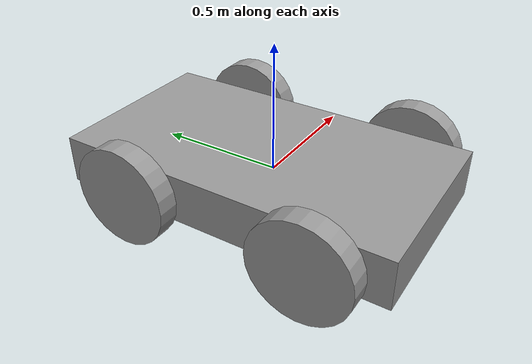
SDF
<?xml version='1.0'?>
<sdf version='1.6'>
  <model name='my_robot'>
    <link name='link_0'>
      <pose frame=''>-2e-05 0.028042 1e-06 0 -0 0</pose>
      <inertial>
        <mass>0.185125</mass>
        <inertia>
          <ixx>0.0283487</ixx>
          <ixy>0</ixy>
          <ixz>0</ixz>
          <iyy>0.00866132</iyy>
          <iyz>0</iyz>
          <izz>0.0358923</izz>
        </inertia>
        <pose frame=''>0 0 0 0 -0 0</pose>
      </inertial>
      <gravity>1</gravity>
      <self_collide>0</self_collide>
      <kinematic>0</kinematic>
      <visual name='visual'>
        <pose frame=''>0 0 0 0 -0 0</pose>
        <geometry>
          <box>
            <size>0.724715 1.34215 0.190327</size>
          </box>
        </geometry>
        <material>
          <lighting>1</lighting>
          <script>
            <uri>file://media/materials/scripts/gazebo.material</uri>
            <name>Gazebo/Grey</name>
          </script>
          <shader type='pixel'>
            <normal_map>__default__</normal_map>
          </shader>
          <ambient>0.3 0.3 0.3 1</ambient>
          <diffuse>0.7 0.7 0.7 1</diffuse>
          <specular>0.01 0.01 0.01 1</specular>
          <emissive>0 0 0 1</emissive>
        </material>
        <transparency>0</transparency>
        <cast_shadows>1</cast_shadows>
      </visual>
      <collision name='collision'>
        <laser_retro>0</laser_retro>
        <max_contacts>10</max_contacts>
        <pose frame=''>0 0 0 0 -0 0</pose>
        <geometry>
          <box>
            <size>0.724715 1.34215 0.190327</size>
          </box>
        </geometry>
        <surface>
          <friction>
            <ode>
              <mu>1</mu>
              <mu2>1</mu2>
              <fdir1>0 0 0</fdir1>
              <slip1>0</slip1>
              <slip2>0</slip2>
            </ode>
            <torsional>
              <coefficient>1</coefficient>
              <patch_radius>0</patch_radius>
              <surface_radius>0</surface_radius>
              <use_patch_radius>1</use_patch_radius>
              <ode>
                <slip>0</slip>
              </ode>
            </torsional>
          </friction>
          <bounce>
            <restitution_coefficient>0</restitution_coefficient>
            <threshold>1e+06</threshold>
          </bounce>
          <contact>
            <collide_without_contact>0</collide_without_contact>
            <collide_without_contact_bitmask>1</collide_without_contact_bitmask>
            <collide_bitmask>1</collide_bitmask>
            <ode>
              <soft_cfm>0</soft_cfm>
              <soft_erp>0.2</soft_erp>
              <kp>1e+13</kp>
              <kd>1</kd>
              <max_vel>0.01</max_vel>
              <min_depth>0</min_depth>
            </ode>
            <bullet>
              <split_impulse>1</split_impulse>
              <split_impulse_penetration_threshold>-0.01</split_impulse_penetration_threshold>
              <soft_cfm>0</soft_cfm>
              <soft_erp>0.2</soft_erp>
              <kp>1e+13</kp>
              <kd>1</kd>
            </bullet>
          </contact>
        </surface>
      </collision>
    </link>
    <link name='link_1'>
      <pose frame=''>0.423226 -0.390765 -0 3e-06 1.57079 3e-06</pose>
      <inertial>
        <mass>0.0126815</mass>
        <inertia>
          <ixx>0.000126592</ixx>
          <ixy>0</ixy>
          <ixz>0</ixz>
          <iyy>0.000126592</iyy>
          <iyz>0</iyz>
          <izz>0.000238117</izz>
        </inertia>
        <pose frame=''>0 0 0 0 -0 0</pose>
      </inertial>
      <gravity>1</gravity>
      <self_collide>0</self_collide>
      <kinematic>0</kinematic>
      <visual name='visual'>
        <pose frame=''>0 0 0 0 -0 0</pose>
        <geometry>
          <cylinder>
            <radius>0.193787</radius>
            <length>0.0844304</length>
          </cylinder>
        </geometry>
        <material>
          <lighting>1</lighting>
          <script>
            <uri>file://media/materials/scripts/gazebo.material</uri>
            <name>Gazebo/Grey</name>
          </script>
          <shader type='pixel'>
            <normal_map>__default__</normal_map>
          </shader>
          <ambient>0.3 0.3 0.3 1</ambient>
          <diffuse>0.7 0.7 0.7 1</diffuse>
          <specular>0.01 0.01 0.01 1</specular>
          <emissive>0 0 0 1</emissive>
        </material>
        <transparency>0</transparency>
        <cast_shadows>1</cast_shadows>
      </visual>
      <collision name='collision'>
        <laser_retro>0</laser_retro>
        <max_contacts>10</max_contacts>
        <pose frame=''>0 0 0 0 -0 0</pose>
        <geometry>
          <cylinder>
            <radius>0.193787</radius>
            <length>0.08443</length>
          </cylinder>
        </geometry>
        <surface>
          <friction>
            <ode>
              <mu>1</mu>
              <mu2>1</mu2>
              <fdir1>0 0 0</fdir1>
              <slip1>0</slip1>
              <slip2>0</slip2>
            </ode>
            <torsional>
              <coefficient>1</coefficient>
              <patch_radius>0</patch_radius>
              <surface_radius>0</surface_radius>
              <use_patch_radius>1</use_patch_radius>
              <ode>
                <slip>0</slip>
              </ode>
            </torsional>
          </friction>
          <bounce>
            <restitution_coefficient>0</restitution_coefficient>
            <threshold>1e+06</threshold>
          </bounce>
          <contact>
            <collide_without_contact>0</collide_without_contact>
            <collide_without_contact_bitmask>1</collide_without_contact_bitmask>
            <collide_bitmask>1</collide_bitmask>
            <ode>
              <soft_cfm>0</soft_cfm>
              <soft_erp>0.2</soft_erp>
              <kp>1e+13</kp>
              <kd>1</kd>
              <max_vel>0.01</max_vel>
              <min_depth>0</min_depth>
            </ode>
            <bullet>
              <split_impulse>1</split_impulse>
              <split_impulse_penetration_threshold>-0.01</split_impulse_penetration_threshold>
              <soft_cfm>0</soft_cfm>
              <soft_erp>0.2</soft_erp>
              <kp>1e+13</kp>
              <kd>1</kd>
            </bullet>
          </contact>
        </surface>
      </collision>
    </link>
    <link name='link_1_clone'>
      <pose frame=''>0.429034 0.376548 -0 3e-06 1.57079 3e-06</pose>
      <inertial>
        <mass>0.0126815</mass>
        <inertia>
          <ixx>0.000126592</ixx>
          <ixy>0</ixy>
          <ixz>0</ixz>
          <iyy>0.000126592</iyy>
          <iyz>0</iyz>
          <izz>0.000238117</izz>
        </inertia>
        <pose frame=''>0 0 0 0 -0 0</pose>
      </inertial>
      <self_collide>0</self_collide>
      <kinematic>0</kinematic>
      <visual name='visual'>
        <pose frame=''>0 0 0 0 -0 0</pose>
        <geometry>
          <cylinder>
            <radius>0.193787</radius>
            <length>0.0844304</length>
          </cylinder>
        </geometry>
        <material>
          <lighting>1</lighting>
          <script>
            <uri>file://media/materials/scripts/gazebo.material</uri>
            <name>Gazebo/Grey</name>
          </script>
          <shader type='pixel'>
            <normal_map>__default__</normal_map>
          </shader>
          <ambient>0.3 0.3 0.3 1</ambient>
          <diffuse>0.7 0.7 0.7 1</diffuse>
          <specular>0.01 0.01 0.01 1</specular>
          <emissive>0 0 0 1</emissive>
        </material>
        <transparency>0</transparency>
        <cast_shadows>1</cast_shadows>
      </visual>
      <collision name='collision'>
        <laser_retro>0</laser_retro>
        <max_contacts>10</max_contacts>
        <pose frame=''>0 0 0 0 -0 0</pose>
        <geometry>
          <cylinder>
            <radius>0.193787</radius>
            <length>0.08443</length>
          </cylinder>
        </geometry>
        <surface>
          <friction>
            <ode>
              <mu>1</mu>
              <mu2>1</mu2>
              <fdir1>0 0 0</fdir1>
              <slip1>0</slip1>
              <slip2>0</slip2>
            </ode>
            <torsional>
              <coefficient>1</coefficient>
              <patch_radius>0</patch_radius>
              <surface_radius>0</surface_radius>
              <use_patch_radius>1</use_patch_radius>
              <ode>
                <slip>0</slip>
              </ode>
            </torsional>
          </friction>
          <bounce>
            <restitution_coefficient>0</restitution_coefficient>
            <threshold>1e+06</threshold>
          </bounce>
          <contact>
            <collide_without_contact>0</collide_without_contact>
            <collide_without_contact_bitmask>1</collide_without_contact_bitmask>
            <collide_bitmask>1</collide_bitmask>
            <ode>
              <soft_cfm>0</soft_cfm>
              <soft_erp>0.2</soft_erp>
              <kp>1e+13</kp>
              <kd>1</kd>
              <max_vel>0.01</max_vel>
              <min_depth>0</min_depth>
            </ode>
            <bullet>
              <split_impulse>1</split_impulse>
              <split_impulse_penetration_threshold>-0.01</split_impulse_penetration_threshold>
              <soft_cfm>0</soft_cfm>
              <soft_erp>0.2</soft_erp>
              <kp>1e+13</kp>
              <kd>1</kd>
            </bullet>
          </contact>
        </surface>
      </collision>
    </link>
    <link name='link_1_clone_1'>
      <pose frame=''>-0.42248 0.359162 -0 3e-06 1.57079 3e-06</pose>
      <inertial>
        <mass>0.0126815</mass>
        <inertia>
          <ixx>0.00012659</ixx>
          <ixy>0</ixy>
          <ixz>0</ixz>
          <iyy>0.00012659</iyy>
          <iyz>0</iyz>
          <izz>0.00023812</izz>
        </inertia>
        <pose frame=''>0 0 0 0 -0 0</pose>
      </inertial>
      <self_collide>0</self_collide>
      <kinematic>0</kinematic>
      <gravity>1</gravity>
      <visual name='visual'>
        <pose frame=''>0 0 0 0 -0 0</pose>
        <geometry>
          <cylinder>
            <radius>0.193787</radius>
            <length>0.0844304</length>
          </cylinder>
        </geometry>
        <material>
          <lighting>1</lighting>
          <script>
            <uri>file://media/materials/scripts/gazebo.material</uri>
            <name>Gazebo/Grey</name>
          </script>
          <shader type='pixel'>
            <normal_map>__default__</normal_map>
          </shader>
          <ambient>0.3 0.3 0.3 1</ambient>
          <diffuse>0.7 0.7 0.7 1</diffuse>
          <specular>0.01 0.01 0.01 1</specular>
          <emissive>0 0 0 1</emissive>
        </material>
        <transparency>0</transparency>
        <cast_shadows>1</cast_shadows>
      </visual>
      <collision name='collision'>
        <laser_retro>0</laser_retro>
        <max_contacts>10</max_contacts>
        <pose frame=''>0 0 0 0 -0 0</pose>
        <geometry>
          <cylinder>
            <radius>0.193787</radius>
            <length>0.08443</length>
          </cylinder>
        </geometry>
        <surface>
          <friction>
            <ode>
              <mu>1</mu>
              <mu2>1</mu2>
              <fdir1>0 0 0</fdir1>
              <slip1>0</slip1>
              <slip2>0</slip2>
            </ode>
            <torsional>
              <coefficient>1</coefficient>
              <patch_radius>0</patch_radius>
              <surface_radius>0</surface_radius>
              <use_patch_radius>1</use_patch_radius>
              <ode>
                <slip>0</slip>
              </ode>
            </torsional>
          </friction>
          <bounce>
            <restitution_coefficient>0</restitution_coefficient>
            <threshold>1e+06</threshold>
          </bounce>
          <contact>
            <collide_without_contact>0</collide_without_contact>
            <collide_without_contact_bitmask>1</collide_without_contact_bitmask>
            <collide_bitmask>1</collide_bitmask>
            <ode>
              <soft_cfm>0</soft_cfm>
              <soft_erp>0.2</soft_erp>
              <kp>1e+13</kp>
              <kd>1</kd>
              <max_vel>0.01</max_vel>
              <min_depth>0</min_depth>
            </ode>
            <bullet>
              <split_impulse>1</split_impulse>
              <split_impulse_penetration_threshold>-0.01</split_impulse_penetration_threshold>
              <soft_cfm>0</soft_cfm>
              <soft_erp>0.2</soft_erp>
              <kp>1e+13</kp>
              <kd>1</kd>
            </bullet>
          </contact>
        </surface>
      </collision>
    </link>
    <link name='link_1_clone_1_clone'>
      <pose frame=''>-0.429766 -0.372991 -0 3e-06 1.57079 3e-06</pose>
      <inertial>
        <mass>0.0126815</mass>
        <inertia>
          <ixx>0.000126592</ixx>
          <ixy>0</ixy>
          <ixz>0</ixz>
          <iyy>0.000126592</iyy>
          <iyz>0</iyz>
          <izz>0.000238117</izz>
        </inertia>
        <pose frame=''>0 0 0 0 -0 0</pose>
      </inertial>
      <self_collide>0</self_collide>
      <kinematic>0</kinematic>
      <visual name='visual'>
        <pose frame=''>0 0 0 0 -0 0</pose>
        <geometry>
          <cylinder>
            <radius>0.193787</radius>
            <length>0.0844304</length>
          </cylinder>
        </geometry>
        <material>
          <lighting>1</lighting>
          <script>
            <uri>file://media/materials/scripts/gazebo.material</uri>
            <name>Gazebo/Grey</name>
          </script>
          <shader type='pixel'>
            <normal_map>__default__</normal_map>
          </shader>
          <ambient>0.3 0.3 0.3 1</ambient>
          <diffuse>0.7 0.7 0.7 1</diffuse>
          <specular>0.01 0.01 0.01 1</specular>
          <emissive>0 0 0 1</emissive>
        </material>
        <transparency>0</transparency>
        <cast_shadows>1</cast_shadows>
      </visual>
      <collision name='collision'>
        <laser_retro>0</laser_retro>
        <max_contacts>10</max_contacts>
        <pose frame=''>0 0 0 0 -0 0</pose>
        <geometry>
          <cylinder>
            <radius>0.193787</radius>
            <length>0.08443</length>
          </cylinder>
        </geometry>
        <surface>
          <friction>
            <ode>
              <mu>1</mu>
              <mu2>1</mu2>
              <fdir1>0 0 0</fdir1>
              <slip1>0</slip1>
              <slip2>0</slip2>
            </ode>
            <torsional>
              <coefficient>1</coefficient>
              <patch_radius>0</patch_radius>
              <surface_radius>0</surface_radius>
              <use_patch_radius>1</use_patch_radius>
              <ode>
                <slip>0</slip>
              </ode>
            </torsional>
          </friction>
          <bounce>
            <restitution_coefficient>0</restitution_coefficient>
            <threshold>1e+06</threshold>
          </bounce>
          <contact>
            <collide_without_contact>0</collide_without_contact>
            <collide_without_contact_bitmask>1</collide_without_contact_bitmask>
            <collide_bitmask>1</collide_bitmask>
            <ode>
              <soft_cfm>0</soft_cfm>
              <soft_erp>0.2</soft_erp>
              <kp>1e+13</kp>
              <kd>1</kd>
              <max_vel>0.01</max_vel>
              <min_depth>0</min_depth>
            </ode>
            <bullet>
              <split_impulse>1</split_impulse>
              <split_impulse_penetration_threshold>-0.01</split_impulse_penetration_threshold>
              <soft_cfm>0</soft_cfm>
              <soft_erp>0.2</soft_erp>
              <kp>1e+13</kp>
              <kd>1</kd>
            </bullet>
          </contact>
        </surface>
      </collision>
    </link>
    <joint name='link_0_JOINT_0' type='revolute'>
      <parent>link_0</parent>
      <child>link_1_clone_1</child>
      <pose frame=''>0 0 0 0 -0 0</pose>
      <axis>
        <xyz>0 0 1</xyz>
        <use_parent_model_frame>0</use_parent_model_frame>
        <limit>
          <lower>-1.79769e+308</lower>
          <upper>1.79769e+308</upper>
          <effort>-1</effort>
          <velocity>-1</velocity>
        </limit>
        <dynamics>
          <spring_reference>0</spring_reference>
          <spring_stiffness>0</spring_stiffness>
          <damping>0</damping>
          <friction>0</friction>
        </dynamics>
      </axis>
      <physics>
        <ode>
          <limit>
            <cfm>0</cfm>
            <erp>0.2</erp>
          </limit>
          <suspension>
            <cfm>0</cfm>
            <erp>0.2</erp>
          </suspension>
        </ode>
      </physics>
    </joint>
    <joint name='link_0_JOINT_2' type='revolute'>
      <parent>link_0</parent>
      <child>link_1</child>
      <pose frame=''>0 0 0 0 -0 0</pose>
      <axis>
        <xyz>0 0 -1</xyz>
        <use_parent_model_frame>0</use_parent_model_frame>
        <limit>
          <lower>-1.79769e+308</lower>
          <upper>1.79769e+308</upper>
          <effort>-1</effort>
          <velocity>-1</velocity>
        </limit>
        <dynamics>
          <spring_reference>0</spring_reference>
          <spring_stiffness>0</spring_stiffness>
          <damping>0</damping>
          <friction>0</friction>
        </dynamics>
      </axis>
      <physics>
        <ode>
          <limit>
            <cfm>0</cfm>
            <erp>0.2</erp>
          </limit>
          <suspension>
            <cfm>0</cfm>
            <erp>0.2</erp>
          </suspension>
        </ode>
      </physics>
    </joint>
    <joint name='link_0_JOINT_3' type='revolute'>
      <parent>link_0</parent>
      <child>link_1_clone</child>
      <pose frame=''>0 0 0 0 -0 0</pose>
      <axis>
        <xyz>0 0 -1</xyz>
        <use_parent_model_frame>0</use_parent_model_frame>
        <limit>
          <lower>-1.79769e+308</lower>
          <upper>1.79769e+308</upper>
          <effort>-1</effort>
          <velocity>-1</velocity>
        </limit>
        <dynamics>
          <spring_reference>0</spring_reference>
          <spring_stiffness>0</spring_stiffness>
          <damping>0</damping>
          <friction>0</friction>
        </dynamics>
      </axis>
      <physics>
        <ode>
          <limit>
            <cfm>0</cfm>
            <erp>0.2</erp>
          </limit>
          <suspension>
            <cfm>0</cfm>
            <erp>0.2</erp>
          </suspension>
        </ode>
      </physics>
    </joint>
    <joint name='link_0_JOINT_4' type='revolute'>
      <parent>link_0</parent>
      <child>link_1_clone_1_clone</child>
      <pose frame=''>0 0 0 0 -0 0</pose>
      <axis>
        <xyz>0 0 1</xyz>
        <use_parent_model_frame>0</use_parent_model_frame>
        <limit>
          <lower>-1.79769e+308</lower>
          <upper>1.79769e+308</upper>
          <effort>-1</effort>
          <velocity>-1</velocity>
        </limit>
        <dynamics>
          <spring_reference>0</spring_reference>
          <spring_stiffness>0</spring_stiffness>
          <damping>0</damping>
          <friction>0</friction>
        </dynamics>
      </axis>
      <physics>
        <ode>
          <limit>
            <cfm>0</cfm>
            <erp>0.2</erp>
          </limit>
          <suspension>
            <cfm>0</cfm>
            <erp>0.2</erp>
          </suspension>
        </ode>
      </physics>
    </joint>
    <static>0</static>
    <allow_auto_disable>1</allow_auto_disable>
  </model>
</sdf>
